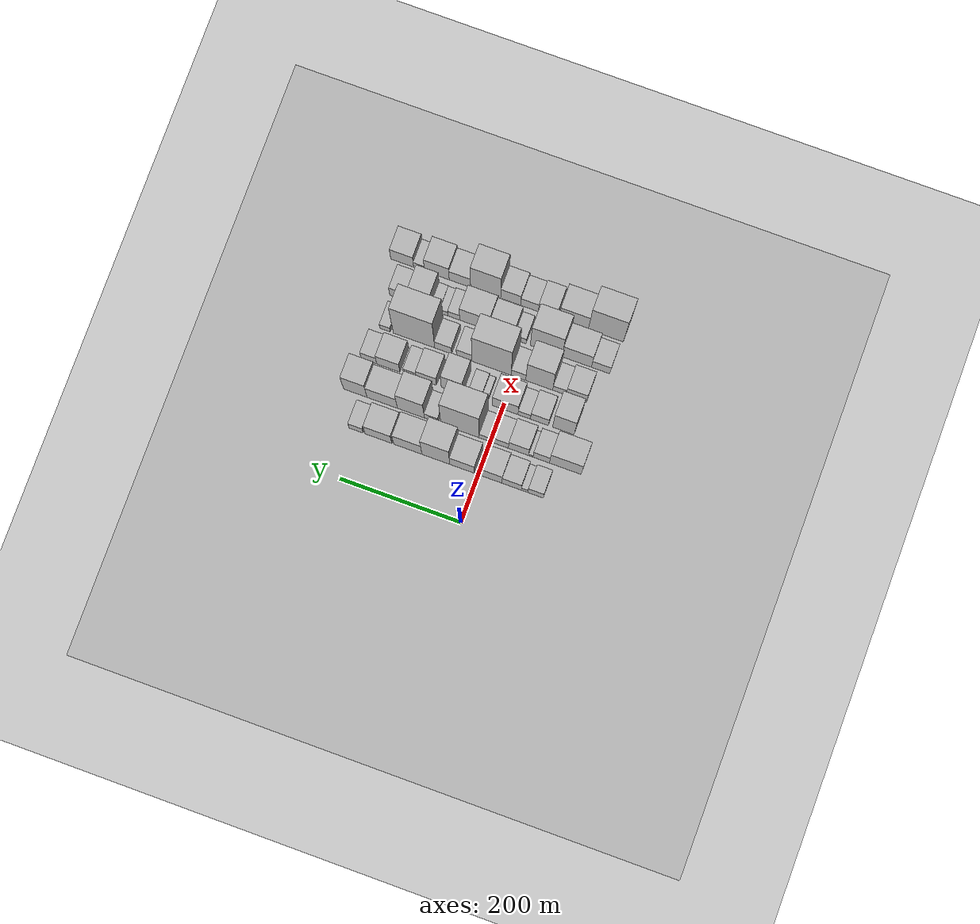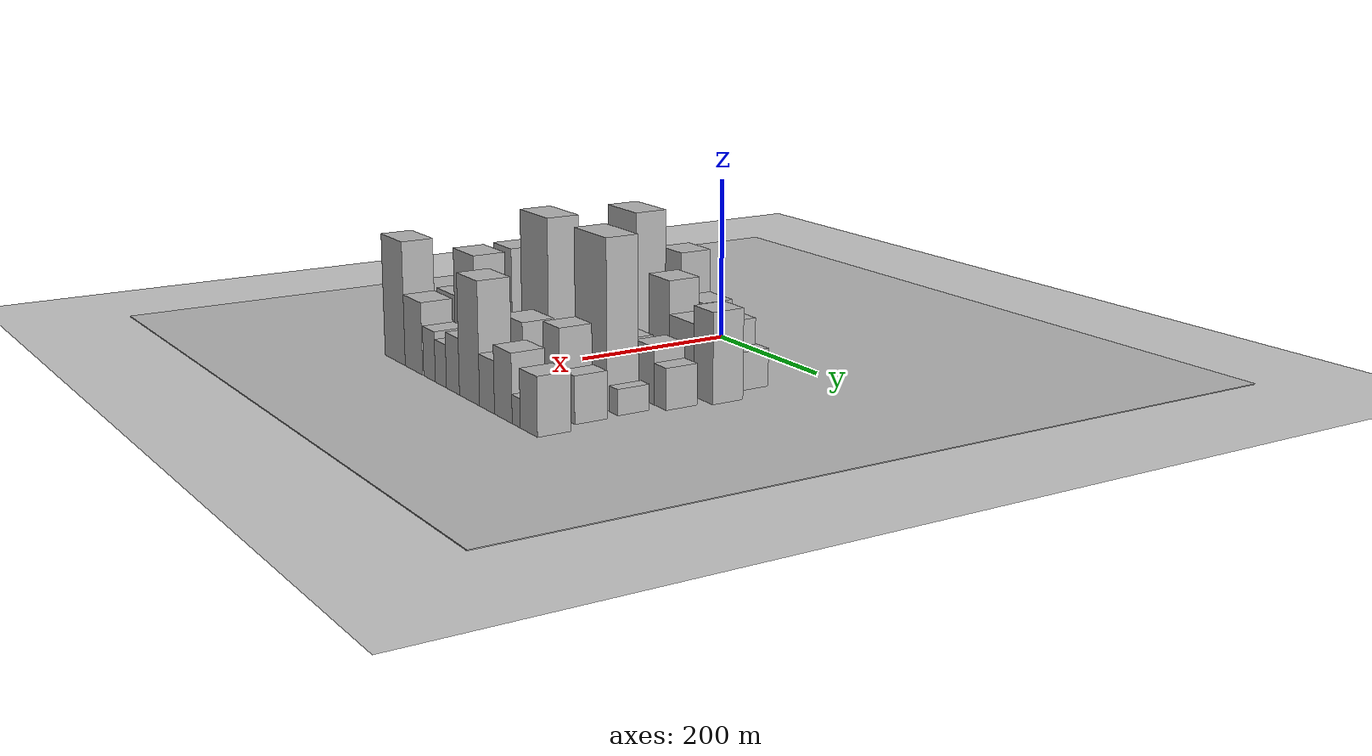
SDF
<sdf version="1.6">
 <world name="default">
  <include><name>ground_plane_1</name><uri>model://HANNAS_ground_plane</uri></include>
  <include>
   <name>ground_plane_2</name>
   <uri>model://HANNAS_ground_plane</uri>
   <pose>100 0 0  0 0 0</pose>
  </include>
  <model name="building_19">
   <static>1</static>
   <pose>100.0000 -94.1826 0 0.000000 0.000000 0.000000</pose>
   <link name="link">
    <pose>0 0 24.00 0 0 0</pose>
    <collision name="collision"><geometry><box><size>40.0000 25.4878 48.0000</size></box></geometry></collision>
    <visual name="visual">
     <cast_shadows>0</cast_shadows>
     <geometry><box><size>40.0000 25.4878 48.0000</size></box></geometry>
     <material>
      <script>
       <uri>model://HANNAS_wall/materials/scripts</uri>
       <uri>model://HANNAS_wall/materials/textures</uri>
       <name>vrc/HANNAS_wall</name>
      </script>
     </material>
    </visual>
   </link>
  </model>
  <model name="building_20">
   <static>1</static>
   <pose>100.0000 -75.9171 0 0.000000 0.000000 0.000000</pose>
   <link name="link">
    <pose>0 0 13.50 0 0 0</pose>
    <collision name="collision"><geometry><box><size>40.0000 11.0433 27.0000</size></box></geometry></collision>
    <visual name="visual">
     <cast_shadows>0</cast_shadows>
     <geometry><box><size>40.0000 11.0433 27.0000</size></box></geometry>
     <material>
      <script>
       <uri>model://HANNAS_wall/materials/scripts</uri>
       <uri>model://HANNAS_wall/materials/textures</uri>
       <name>vrc/HANNAS_wall</name>
      </script>
     </material>
    </visual>
   </link>
  </model>
  <model name="building_21">
   <static>1</static>
   <pose>100.0000 -54.4602 0 0.000000 0.000000 0.000000</pose>
   <link name="link">
    <pose>0 0 28.50 0 0 0</pose>
    <collision name="collision"><geometry><box><size>40.0000 31.8704 57.0000</size></box></geometry></collision>
    <visual name="visual">
     <cast_shadows>0</cast_shadows>
     <geometry><box><size>40.0000 31.8704 57.0000</size></box></geometry>
     <material>
      <script>
       <uri>model://HANNAS_wall/materials/scripts</uri>
       <uri>model://HANNAS_wall/materials/textures</uri>
       <name>vrc/HANNAS_wall</name>
      </script>
     </material>
    </visual>
   </link>
  </model>
  <model name="building_22">
   <static>1</static>
   <pose>100.0000 -20.2143 0 0.000000 0.000000 0.000000</pose>
   <link name="link">
    <pose>0 0 36.00 0 0 0</pose>
    <collision name="collision"><geometry><box><size>40.0000 36.6214 72.0000</size></box></geometry></collision>
    <visual name="visual">
     <cast_shadows>0</cast_shadows>
     <geometry><box><size>40.0000 36.6214 72.0000</size></box></geometry>
     <material>
      <script>
       <uri>model://HANNAS_wall/materials/scripts</uri>
       <uri>model://HANNAS_wall/materials/textures</uri>
       <name>vrc/HANNAS_wall</name>
      </script>
     </material>
    </visual>
   </link>
  </model>
  <model name="building_23">
   <static>1</static>
   <pose>100.0000 27.4279 0 0.000000 0.000000 0.000000</pose>
   <link name="link">
    <pose>0 0 36.00 0 0 0</pose>
    <collision name="collision"><geometry><box><size>40.0000 40.6630 72.0000</size></box></geometry></collision>
    <visual name="visual">
     <cast_shadows>0</cast_shadows>
     <geometry><box><size>40.0000 40.6630 72.0000</size></box></geometry>
     <material>
      <script>
       <uri>model://HANNAS_wall/materials/scripts</uri>
       <uri>model://HANNAS_wall/materials/textures</uri>
       <name>vrc/HANNAS_wall</name>
      </script>
     </material>
    </visual>
   </link>
  </model>
  <model name="building_24">
   <static>1</static>
   <pose>100.0000 70.9083 0 0.000000 0.000000 0.000000</pose>
   <link name="link">
    <pose>0 0 69.00 0 0 0</pose>
    <collision name="collision"><geometry><box><size>40.0000 46.2979 138.0000</size></box></geometry></collision>
    <visual name="visual">
     <cast_shadows>0</cast_shadows>
     <geometry><box><size>40.0000 46.2979 138.0000</size></box></geometry>
     <material>
      <script>
       <uri>model://HANNAS_wall/materials/scripts</uri>
       <uri>model://HANNAS_wall/materials/textures</uri>
       <name>vrc/HANNAS_wall</name>
      </script>
     </material>
    </visual>
   </link>
  </model>
  <model name="building_25">
   <static>1</static>
   <pose>100.0000 117.3907 0 0.000000 0.000000 0.000000</pose>
   <link name="link">
    <pose>0 0 43.50 0 0 0</pose>
    <collision name="collision"><geometry><box><size>40.0000 46.6670 87.0000</size></box></geometry></collision>
    <visual name="visual">
     <cast_shadows>0</cast_shadows>
     <geometry><box><size>40.0000 46.6670 87.0000</size></box></geometry>
     <material>
      <script>
       <uri>model://HANNAS_wall/materials/scripts</uri>
       <uri>model://HANNAS_wall/materials/textures</uri>
       <name>vrc/HANNAS_wall</name>
      </script>
     </material>
    </visual>
   </link>
  </model>
  <model name="building_26">
   <static>1</static>
   <pose>100.0000 166.1145 0 0.000000 0.000000 0.000000</pose>
   <link name="link">
    <pose>0 0 37.50 0 0 0</pose>
    <collision name="collision"><geometry><box><size>40.0000 44.7805 75.0000</size></box></geometry></collision>
    <visual name="visual">
     <cast_shadows>0</cast_shadows>
     <geometry><box><size>40.0000 44.7805 75.0000</size></box></geometry>
     <material>
      <script>
       <uri>model://HANNAS_wall/materials/scripts</uri>
       <uri>model://HANNAS_wall/materials/textures</uri>
       <name>vrc/HANNAS_wall</name>
      </script>
     </material>
    </visual>
   </link>
  </model>
  <model name="building_27">
   <static>1</static>
   <pose>100.0000 203.1543 0 0.000000 0.000000 0.000000</pose>
   <link name="link">
    <pose>0 0 22.50 0 0 0</pose>
    <collision name="collision"><geometry><box><size>40.0000 23.2992 45.0000</size></box></geometry></collision>
    <visual name="visual">
     <cast_shadows>0</cast_shadows>
     <geometry><box><size>40.0000 23.2992 45.0000</size></box></geometry>
     <material>
      <script>
       <uri>model://HANNAS_wall/materials/scripts</uri>
       <uri>model://HANNAS_wall/materials/textures</uri>
       <name>vrc/HANNAS_wall</name>
      </script>
     </material>
    </visual>
   </link>
  </model>
  <model name="building_66">
   <static>1</static>
   <pose>155.0000 -123.4491 0 0.000000 0.000000 0.000000</pose>
   <link name="link">
    <pose>0 0 45.00 0 0 0</pose>
    <collision name="collision"><geometry><box><size>40.0000 52.4199 90.0000</size></box></geometry></collision>
    <visual name="visual">
     <cast_shadows>0</cast_shadows>
     <geometry><box><size>40.0000 52.4199 90.0000</size></box></geometry>
     <material>
      <script>
       <uri>model://HANNAS_wall/materials/scripts</uri>
       <uri>model://HANNAS_wall/materials/textures</uri>
       <name>vrc/HANNAS_wall</name>
      </script>
     </material>
    </visual>
   </link>
  </model>
  <model name="building_67">
   <static>1</static>
   <pose>155.0000 -83.6687 0 0.000000 0.000000 0.000000</pose>
   <link name="link">
    <pose>0 0 27.00 0 0 0</pose>
    <collision name="collision"><geometry><box><size>40.0000 27.1410 54.0000</size></box></geometry></collision>
    <visual name="visual">
     <cast_shadows>0</cast_shadows>
     <geometry><box><size>40.0000 27.1410 54.0000</size></box></geometry>
     <material>
      <script>
       <uri>model://HANNAS_wall/materials/scripts</uri>
       <uri>model://HANNAS_wall/materials/textures</uri>
       <name>vrc/HANNAS_wall</name>
      </script>
     </material>
    </visual>
   </link>
  </model>
  <model name="building_68">
   <static>1</static>
   <pose>155.0000 -66.5116 0 0.000000 0.000000 0.000000</pose>
   <link name="link">
    <pose>0 0 7.50 0 0 0</pose>
    <collision name="collision"><geometry><box><size>40.0000 7.1732 15.0000</size></box></geometry></collision>
    <visual name="visual">
     <cast_shadows>0</cast_shadows>
     <geometry><box><size>40.0000 7.1732 15.0000</size></box></geometry>
     <material>
      <script>
       <uri>model://HANNAS_wall/materials/scripts</uri>
       <uri>model://HANNAS_wall/materials/textures</uri>
       <name>vrc/HANNAS_wall</name>
      </script>
     </material>
    </visual>
   </link>
  </model>
  <model name="building_69">
   <static>1</static>
   <pose>155.0000 -46.1079 0 0.000000 0.000000 0.000000</pose>
   <link name="link">
    <pose>0 0 31.50 0 0 0</pose>
    <collision name="collision"><geometry><box><size>40.0000 33.6343 63.0000</size></box></geometry></collision>
    <visual name="visual">
     <cast_shadows>0</cast_shadows>
     <geometry><box><size>40.0000 33.6343 63.0000</size></box></geometry>
     <material>
      <script>
       <uri>model://HANNAS_wall/materials/scripts</uri>
       <uri>model://HANNAS_wall/materials/textures</uri>
       <name>vrc/HANNAS_wall</name>
      </script>
     </material>
    </visual>
   </link>
  </model>
  <model name="building_70">
   <static>1</static>
   <pose>155.0000 -15.5659 0 0.000000 0.000000 0.000000</pose>
   <link name="link">
    <pose>0 0 24.00 0 0 0</pose>
    <collision name="collision"><geometry><box><size>40.0000 27.4497 48.0000</size></box></geometry></collision>
    <visual name="visual">
     <cast_shadows>0</cast_shadows>
     <geometry><box><size>40.0000 27.4497 48.0000</size></box></geometry>
     <material>
      <script>
       <uri>model://HANNAS_wall/materials/scripts</uri>
       <uri>model://HANNAS_wall/materials/textures</uri>
       <name>vrc/HANNAS_wall</name>
      </script>
     </material>
    </visual>
   </link>
  </model>
  <model name="building_71">
   <static>1</static>
   <pose>155.0000 8.6668 0 0.000000 0.000000 0.000000</pose>
   <link name="link">
    <pose>0 0 18.00 0 0 0</pose>
    <collision name="collision"><geometry><box><size>40.0000 21.0157 36.0000</size></box></geometry></collision>
    <visual name="visual">
     <cast_shadows>0</cast_shadows>
     <geometry><box><size>40.0000 21.0157 36.0000</size></box></geometry>
     <material>
      <script>
       <uri>model://HANNAS_wall/materials/scripts</uri>
       <uri>model://HANNAS_wall/materials/textures</uri>
       <name>vrc/HANNAS_wall</name>
      </script>
     </material>
    </visual>
   </link>
  </model>
  <model name="building_72">
   <static>1</static>
   <pose>155.0000 50.9459 0 0.000000 0.000000 0.000000</pose>
   <link name="link">
    <pose>0 0 94.50 0 0 0</pose>
    <collision name="collision"><geometry><box><size>40.0000 63.5425 189.0000</size></box></geometry></collision>
    <visual name="visual">
     <cast_shadows>0</cast_shadows>
     <geometry><box><size>40.0000 63.5425 189.0000</size></box></geometry>
     <material>
      <script>
       <uri>model://HANNAS_wall/materials/scripts</uri>
       <uri>model://HANNAS_wall/materials/textures</uri>
       <name>vrc/HANNAS_wall</name>
      </script>
     </material>
    </visual>
   </link>
  </model>
  <model name="building_73">
   <static>1</static>
   <pose>155.0000 98.8356 0 0.000000 0.000000 0.000000</pose>
   <link name="link">
    <pose>0 0 21.00 0 0 0</pose>
    <collision name="collision"><geometry><box><size>40.0000 22.2368 42.0000</size></box></geometry></collision>
    <visual name="visual">
     <cast_shadows>0</cast_shadows>
     <geometry><box><size>40.0000 22.2368 42.0000</size></box></geometry>
     <material>
      <script>
       <uri>model://HANNAS_wall/materials/scripts</uri>
       <uri>model://HANNAS_wall/materials/textures</uri>
       <name>vrc/HANNAS_wall</name>
      </script>
     </material>
    </visual>
   </link>
  </model>
  <model name="building_74">
   <static>1</static>
   <pose>155.0000 132.4688 0 0.000000 0.000000 0.000000</pose>
   <link name="link">
    <pose>0 0 61.50 0 0 0</pose>
    <collision name="collision"><geometry><box><size>40.0000 45.0297 123.0000</size></box></geometry></collision>
    <visual name="visual">
     <cast_shadows>0</cast_shadows>
     <geometry><box><size>40.0000 45.0297 123.0000</size></box></geometry>
     <material>
      <script>
       <uri>model://HANNAS_wall/materials/scripts</uri>
       <uri>model://HANNAS_wall/materials/textures</uri>
       <name>vrc/HANNAS_wall</name>
      </script>
     </material>
    </visual>
   </link>
  </model>
  <model name="building_75">
   <static>1</static>
   <pose>155.0000 180.1663 0 0.000000 0.000000 0.000000</pose>
   <link name="link">
    <pose>0 0 42.00 0 0 0</pose>
    <collision name="collision"><geometry><box><size>40.0000 50.3654 84.0000</size></box></geometry></collision>
    <visual name="visual">
     <cast_shadows>0</cast_shadows>
     <geometry><box><size>40.0000 50.3654 84.0000</size></box></geometry>
     <material>
      <script>
       <uri>model://HANNAS_wall/materials/scripts</uri>
       <uri>model://HANNAS_wall/materials/textures</uri>
       <name>vrc/HANNAS_wall</name>
      </script>
     </material>
    </visual>
   </link>
  </model>
  <model name="building_76">
   <static>1</static>
   <pose>155.0000 224.8794 0 0.000000 0.000000 0.000000</pose>
   <link name="link">
    <pose>0 0 52.50 0 0 0</pose>
    <collision name="collision"><geometry><box><size>40.0000 39.0606 105.0000</size></box></geometry></collision>
    <visual name="visual">
     <cast_shadows>0</cast_shadows>
     <geometry><box><size>40.0000 39.0606 105.0000</size></box></geometry>
     <material>
      <script>
       <uri>model://HANNAS_wall/materials/scripts</uri>
       <uri>model://HANNAS_wall/materials/textures</uri>
       <name>vrc/HANNAS_wall</name>
      </script>
     </material>
    </visual>
   </link>
  </model>
  <model name="building_121">
   <static>1</static>
   <pose>210.0000 -100.4886 0 0.000000 0.000000 0.000000</pose>
   <link name="link">
    <pose>0 0 58.50 0 0 0</pose>
    <collision name="collision"><geometry><box><size>40.0000 35.5560 117.0000</size></box></geometry></collision>
    <visual name="visual">
     <cast_shadows>0</cast_shadows>
     <geometry><box><size>40.0000 35.5560 117.0000</size></box></geometry>
     <material>
      <script>
       <uri>model://HANNAS_wall/materials/scripts</uri>
       <uri>model://HANNAS_wall/materials/textures</uri>
       <name>vrc/HANNAS_wall</name>
      </script>
     </material>
    </visual>
   </link>
  </model>
  <model name="building_122">
   <static>1</static>
   <pose>210.0000 -60.8595 0 0.000000 0.000000 0.000000</pose>
   <link name="link">
    <pose>0 0 27.00 0 0 0</pose>
    <collision name="collision"><geometry><box><size>40.0000 29.7022 54.0000</size></box></geometry></collision>
    <visual name="visual">
     <cast_shadows>0</cast_shadows>
     <geometry><box><size>40.0000 29.7022 54.0000</size></box></geometry>
     <material>
      <script>
       <uri>model://HANNAS_wall/materials/scripts</uri>
       <uri>model://HANNAS_wall/materials/textures</uri>
       <name>vrc/HANNAS_wall</name>
      </script>
     </material>
    </visual>
   </link>
  </model>
  <model name="building_123">
   <static>1</static>
   <pose>210.0000 -35.5859 0 0.000000 0.000000 0.000000</pose>
   <link name="link">
    <pose>0 0 18.00 0 0 0</pose>
    <collision name="collision"><geometry><box><size>40.0000 20.8452 36.0000</size></box></geometry></collision>
    <visual name="visual">
     <cast_shadows>0</cast_shadows>
     <geometry><box><size>40.0000 20.8452 36.0000</size></box></geometry>
     <material>
      <script>
       <uri>model://HANNAS_wall/materials/scripts</uri>
       <uri>model://HANNAS_wall/materials/textures</uri>
       <name>vrc/HANNAS_wall</name>
      </script>
     </material>
    </visual>
   </link>
  </model>
  <model name="building_124">
   <static>1</static>
   <pose>210.0000 -3.6899 0 0.000000 0.000000 0.000000</pose>
   <link name="link">
    <pose>0 0 37.50 0 0 0</pose>
    <collision name="collision"><geometry><box><size>40.0000 42.9467 75.0000</size></box></geometry></collision>
    <visual name="visual">
     <cast_shadows>0</cast_shadows>
     <geometry><box><size>40.0000 42.9467 75.0000</size></box></geometry>
     <material>
      <script>
       <uri>model://HANNAS_wall/materials/scripts</uri>
       <uri>model://HANNAS_wall/materials/textures</uri>
       <name>vrc/HANNAS_wall</name>
      </script>
     </material>
    </visual>
   </link>
  </model>
  <model name="building_125">
   <static>1</static>
   <pose>210.0000 31.0170 0 0.000000 0.000000 0.000000</pose>
   <link name="link">
    <pose>0 0 12.00 0 0 0</pose>
    <collision name="collision"><geometry><box><size>40.0000 10.4672 24.0000</size></box></geometry></collision>
    <visual name="visual">
     <cast_shadows>0</cast_shadows>
     <geometry><box><size>40.0000 10.4672 24.0000</size></box></geometry>
     <material>
      <script>
       <uri>model://HANNAS_wall/materials/scripts</uri>
       <uri>model://HANNAS_wall/materials/textures</uri>
       <name>vrc/HANNAS_wall</name>
      </script>
     </material>
    </visual>
   </link>
  </model>
  <model name="building_126">
   <static>1</static>
   <pose>210.0000 47.2341 0 0.000000 0.000000 0.000000</pose>
   <link name="link">
    <pose>0 0 19.50 0 0 0</pose>
    <collision name="collision"><geometry><box><size>40.0000 21.9669 39.0000</size></box></geometry></collision>
    <visual name="visual">
     <cast_shadows>0</cast_shadows>
     <geometry><box><size>40.0000 21.9669 39.0000</size></box></geometry>
     <material>
      <script>
       <uri>model://HANNAS_wall/materials/scripts</uri>
       <uri>model://HANNAS_wall/materials/textures</uri>
       <name>vrc/HANNAS_wall</name>
      </script>
     </material>
    </visual>
   </link>
  </model>
  <model name="building_127">
   <static>1</static>
   <pose>210.0000 84.7265 0 0.000000 0.000000 0.000000</pose>
   <link name="link">
    <pose>0 0 48.00 0 0 0</pose>
    <collision name="collision"><geometry><box><size>40.0000 35.0179 96.0000</size></box></geometry></collision>
    <visual name="visual">
     <cast_shadows>0</cast_shadows>
     <geometry><box><size>40.0000 35.0179 96.0000</size></box></geometry>
     <material>
      <script>
       <uri>model://HANNAS_wall/materials/scripts</uri>
       <uri>model://HANNAS_wall/materials/textures</uri>
       <name>vrc/HANNAS_wall</name>
      </script>
     </material>
    </visual>
   </link>
  </model>
  <model name="building_128">
   <static>1</static>
   <pose>210.0000 127.0119 0 0.000000 0.000000 0.000000</pose>
   <link name="link">
    <pose>0 0 30.00 0 0 0</pose>
    <collision name="collision"><geometry><box><size>40.0000 33.5530 60.0000</size></box></geometry></collision>
    <visual name="visual">
     <cast_shadows>0</cast_shadows>
     <geometry><box><size>40.0000 33.5530 60.0000</size></box></geometry>
     <material>
      <script>
       <uri>model://HANNAS_wall/materials/scripts</uri>
       <uri>model://HANNAS_wall/materials/textures</uri>
       <name>vrc/HANNAS_wall</name>
      </script>
     </material>
    </visual>
   </link>
  </model>
  <model name="building_129">
   <static>1</static>
   <pose>210.0000 154.4551 0 0.000000 0.000000 0.000000</pose>
   <link name="link">
    <pose>0 0 21.00 0 0 0</pose>
    <collision name="collision"><geometry><box><size>40.0000 21.3334 42.0000</size></box></geometry></collision>
    <visual name="visual">
     <cast_shadows>0</cast_shadows>
     <geometry><box><size>40.0000 21.3334 42.0000</size></box></geometry>
     <material>
      <script>
       <uri>model://HANNAS_wall/materials/scripts</uri>
       <uri>model://HANNAS_wall/materials/textures</uri>
       <name>vrc/HANNAS_wall</name>
      </script>
     </material>
    </visual>
   </link>
  </model>
  <model name="building_130">
   <static>1</static>
   <pose>210.0000 190.5072 0 0.000000 0.000000 0.000000</pose>
   <link name="link">
    <pose>0 0 33.00 0 0 0</pose>
    <collision name="collision"><geometry><box><size>40.0000 38.7709 66.0000</size></box></geometry></collision>
    <visual name="visual">
     <cast_shadows>0</cast_shadows>
     <geometry><box><size>40.0000 38.7709 66.0000</size></box></geometry>
     <material>
      <script>
       <uri>model://HANNAS_wall/materials/scripts</uri>
       <uri>model://HANNAS_wall/materials/textures</uri>
       <name>vrc/HANNAS_wall</name>
      </script>
     </material>
    </visual>
   </link>
  </model>
  <model name="building_131">
   <static>1</static>
   <pose>210.0000 222.9151 0 0.000000 0.000000 0.000000</pose>
   <link name="link">
    <pose>0 0 24.00 0 0 0</pose>
    <collision name="collision"><geometry><box><size>40.0000 26.0449 48.0000</size></box></geometry></collision>
    <visual name="visual">
     <cast_shadows>0</cast_shadows>
     <geometry><box><size>40.0000 26.0449 48.0000</size></box></geometry>
     <material>
      <script>
       <uri>model://HANNAS_wall/materials/scripts</uri>
       <uri>model://HANNAS_wall/materials/textures</uri>
       <name>vrc/HANNAS_wall</name>
      </script>
     </material>
    </visual>
   </link>
  </model>
  <model name="building_176">
   <static>1</static>
   <pose>265.0000 -102.4106 0 0.000000 0.000000 0.000000</pose>
   <link name="link">
    <pose>0 0 30.00 0 0 0</pose>
    <collision name="collision"><geometry><box><size>40.0000 33.7626 60.0000</size></box></geometry></collision>
    <visual name="visual">
     <cast_shadows>0</cast_shadows>
     <geometry><box><size>40.0000 33.7626 60.0000</size></box></geometry>
     <material>
      <script>
       <uri>model://HANNAS_wall/materials/scripts</uri>
       <uri>model://HANNAS_wall/materials/textures</uri>
       <name>vrc/HANNAS_wall</name>
      </script>
     </material>
    </visual>
   </link>
  </model>
  <model name="building_177">
   <static>1</static>
   <pose>265.0000 -74.2475 0 0.000000 0.000000 0.000000</pose>
   <link name="link">
    <pose>0 0 19.50 0 0 0</pose>
    <collision name="collision"><geometry><box><size>40.0000 22.5635 39.0000</size></box></geometry></collision>
    <visual name="visual">
     <cast_shadows>0</cast_shadows>
     <geometry><box><size>40.0000 22.5635 39.0000</size></box></geometry>
     <material>
      <script>
       <uri>model://HANNAS_wall/materials/scripts</uri>
       <uri>model://HANNAS_wall/materials/textures</uri>
       <name>vrc/HANNAS_wall</name>
      </script>
     </material>
    </visual>
   </link>
  </model>
  <model name="building_178">
   <static>1</static>
   <pose>265.0000 -40.5972 0 0.000000 0.000000 0.000000</pose>
   <link name="link">
    <pose>0 0 70.50 0 0 0</pose>
    <collision name="collision"><geometry><box><size>40.0000 44.7369 141.0000</size></box></geometry></collision>
    <visual name="visual">
     <cast_shadows>0</cast_shadows>
     <geometry><box><size>40.0000 44.7369 141.0000</size></box></geometry>
     <material>
      <script>
       <uri>model://HANNAS_wall/materials/scripts</uri>
       <uri>model://HANNAS_wall/materials/textures</uri>
       <name>vrc/HANNAS_wall</name>
      </script>
     </material>
    </visual>
   </link>
  </model>
  <model name="building_179">
   <static>1</static>
   <pose>265.0000 -5.9709 0 0.000000 0.000000 0.000000</pose>
   <link name="link">
    <pose>0 0 24.00 0 0 0</pose>
    <collision name="collision"><geometry><box><size>40.0000 24.5157 48.0000</size></box></geometry></collision>
    <visual name="visual">
     <cast_shadows>0</cast_shadows>
     <geometry><box><size>40.0000 24.5157 48.0000</size></box></geometry>
     <material>
      <script>
       <uri>model://HANNAS_wall/materials/scripts</uri>
       <uri>model://HANNAS_wall/materials/textures</uri>
       <name>vrc/HANNAS_wall</name>
      </script>
     </material>
    </visual>
   </link>
  </model>
  <model name="building_180">
   <static>1</static>
   <pose>265.0000 38.8745 0 0.000000 0.000000 0.000000</pose>
   <link name="link">
    <pose>0 0 96.00 0 0 0</pose>
    <collision name="collision"><geometry><box><size>40.0000 65.1752 192.0000</size></box></geometry></collision>
    <visual name="visual">
     <cast_shadows>0</cast_shadows>
     <geometry><box><size>40.0000 65.1752 192.0000</size></box></geometry>
     <material>
      <script>
       <uri>model://HANNAS_wall/materials/scripts</uri>
       <uri>model://HANNAS_wall/materials/textures</uri>
       <name>vrc/HANNAS_wall</name>
      </script>
     </material>
    </visual>
   </link>
  </model>
  <model name="building_181">
   <static>1</static>
   <pose>265.0000 84.2791 0 0.000000 0.000000 0.000000</pose>
   <link name="link">
    <pose>0 0 25.50 0 0 0</pose>
    <collision name="collision"><geometry><box><size>40.0000 25.6340 51.0000</size></box></geometry></collision>
    <visual name="visual">
     <cast_shadows>0</cast_shadows>
     <geometry><box><size>40.0000 25.6340 51.0000</size></box></geometry>
     <material>
      <script>
       <uri>model://HANNAS_wall/materials/scripts</uri>
       <uri>model://HANNAS_wall/materials/textures</uri>
       <name>vrc/HANNAS_wall</name>
      </script>
     </material>
    </visual>
   </link>
  </model>
  <model name="building_182">
   <static>1</static>
   <pose>265.0000 119.2384 0 0.000000 0.000000 0.000000</pose>
   <link name="link">
    <pose>0 0 25.50 0 0 0</pose>
    <collision name="collision"><geometry><box><size>40.0000 28.2844 51.0000</size></box></geometry></collision>
    <visual name="visual">
     <cast_shadows>0</cast_shadows>
     <geometry><box><size>40.0000 28.2844 51.0000</size></box></geometry>
     <material>
      <script>
       <uri>model://HANNAS_wall/materials/scripts</uri>
       <uri>model://HANNAS_wall/materials/textures</uri>
       <name>vrc/HANNAS_wall</name>
      </script>
     </material>
    </visual>
   </link>
  </model>
  <model name="building_183">
   <static>1</static>
   <pose>265.0000 167.9091 0 0.000000 0.000000 0.000000</pose>
   <link name="link">
    <pose>0 0 96.00 0 0 0</pose>
    <collision name="collision"><geometry><box><size>40.0000 69.0570 192.0000</size></box></geometry></collision>
    <visual name="visual">
     <cast_shadows>0</cast_shadows>
     <geometry><box><size>40.0000 69.0570 192.0000</size></box></geometry>
     <material>
      <script>
       <uri>model://HANNAS_wall/materials/scripts</uri>
       <uri>model://HANNAS_wall/materials/textures</uri>
       <name>vrc/HANNAS_wall</name>
      </script>
     </material>
    </visual>
   </link>
  </model>
  <model name="building_184">
   <static>1</static>
   <pose>265.0000 216.3122 0 0.000000 0.000000 0.000000</pose>
   <link name="link">
    <pose>0 0 15.00 0 0 0</pose>
    <collision name="collision"><geometry><box><size>40.0000 17.7493 30.0000</size></box></geometry></collision>
    <visual name="visual">
     <cast_shadows>0</cast_shadows>
     <geometry><box><size>40.0000 17.7493 30.0000</size></box></geometry>
     <material>
      <script>
       <uri>model://HANNAS_wall/materials/scripts</uri>
       <uri>model://HANNAS_wall/materials/textures</uri>
       <name>vrc/HANNAS_wall</name>
      </script>
     </material>
    </visual>
   </link>
  </model>
  <model name="building_227">
   <static>1</static>
   <pose>320.0000 -122.8095 0 0.000000 0.000000 0.000000</pose>
   <link name="link">
    <pose>0 0 25.50 0 0 0</pose>
    <collision name="collision"><geometry><box><size>40.0000 30.4604 51.0000</size></box></geometry></collision>
    <visual name="visual">
     <cast_shadows>0</cast_shadows>
     <geometry><box><size>40.0000 30.4604 51.0000</size></box></geometry>
     <material>
      <script>
       <uri>model://HANNAS_wall/materials/scripts</uri>
       <uri>model://HANNAS_wall/materials/textures</uri>
       <name>vrc/HANNAS_wall</name>
      </script>
     </material>
    </visual>
   </link>
  </model>
  <model name="building_228">
   <static>1</static>
   <pose>320.0000 -83.3158 0 0.000000 0.000000 0.000000</pose>
   <link name="link">
    <pose>0 0 42.00 0 0 0</pose>
    <collision name="collision"><geometry><box><size>40.0000 48.5270 84.0000</size></box></geometry></collision>
    <visual name="visual">
     <cast_shadows>0</cast_shadows>
     <geometry><box><size>40.0000 48.5270 84.0000</size></box></geometry>
     <material>
      <script>
       <uri>model://HANNAS_wall/materials/scripts</uri>
       <uri>model://HANNAS_wall/materials/textures</uri>
       <name>vrc/HANNAS_wall</name>
      </script>
     </material>
    </visual>
   </link>
  </model>
  <model name="building_229">
   <static>1</static>
   <pose>320.0000 -32.4972 0 0.000000 0.000000 0.000000</pose>
   <link name="link">
    <pose>0 0 70.50 0 0 0</pose>
    <collision name="collision"><geometry><box><size>40.0000 53.1104 141.0000</size></box></geometry></collision>
    <visual name="visual">
     <cast_shadows>0</cast_shadows>
     <geometry><box><size>40.0000 53.1104 141.0000</size></box></geometry>
     <material>
      <script>
       <uri>model://HANNAS_wall/materials/scripts</uri>
       <uri>model://HANNAS_wall/materials/textures</uri>
       <name>vrc/HANNAS_wall</name>
      </script>
     </material>
    </visual>
   </link>
  </model>
  <model name="building_230">
   <static>1</static>
   <pose>320.0000 11.0528 0 0.000000 0.000000 0.000000</pose>
   <link name="link">
    <pose>0 0 18.00 0 0 0</pose>
    <collision name="collision"><geometry><box><size>40.0000 19.9895 36.0000</size></box></geometry></collision>
    <visual name="visual">
     <cast_shadows>0</cast_shadows>
     <geometry><box><size>40.0000 19.9895 36.0000</size></box></geometry>
     <material>
      <script>
       <uri>model://HANNAS_wall/materials/scripts</uri>
       <uri>model://HANNAS_wall/materials/textures</uri>
       <name>vrc/HANNAS_wall</name>
      </script>
     </material>
    </visual>
   </link>
  </model>
  <model name="building_231">
   <static>1</static>
   <pose>320.0000 41.7755 0 0.000000 0.000000 0.000000</pose>
   <link name="link">
    <pose>0 0 36.00 0 0 0</pose>
    <collision name="collision"><geometry><box><size>40.0000 41.4560 72.0000</size></box></geometry></collision>
    <visual name="visual">
     <cast_shadows>0</cast_shadows>
     <geometry><box><size>40.0000 41.4560 72.0000</size></box></geometry>
     <material>
      <script>
       <uri>model://HANNAS_wall/materials/scripts</uri>
       <uri>model://HANNAS_wall/materials/textures</uri>
       <name>vrc/HANNAS_wall</name>
      </script>
     </material>
    </visual>
   </link>
  </model>
  <model name="building_232">
   <static>1</static>
   <pose>320.0000 87.2360 0 0.000000 0.000000 0.000000</pose>
   <link name="link">
    <pose>0 0 43.50 0 0 0</pose>
    <collision name="collision"><geometry><box><size>40.0000 49.4651 87.0000</size></box></geometry></collision>
    <visual name="visual">
     <cast_shadows>0</cast_shadows>
     <geometry><box><size>40.0000 49.4651 87.0000</size></box></geometry>
     <material>
      <script>
       <uri>model://HANNAS_wall/materials/scripts</uri>
       <uri>model://HANNAS_wall/materials/textures</uri>
       <name>vrc/HANNAS_wall</name>
      </script>
     </material>
    </visual>
   </link>
  </model>
  <model name="building_233">
   <static>1</static>
   <pose>320.0000 121.8916 0 0.000000 0.000000 0.000000</pose>
   <link name="link">
    <pose>0 0 18.00 0 0 0</pose>
    <collision name="collision"><geometry><box><size>40.0000 19.8460 36.0000</size></box></geometry></collision>
    <visual name="visual">
     <cast_shadows>0</cast_shadows>
     <geometry><box><size>40.0000 19.8460 36.0000</size></box></geometry>
     <material>
      <script>
       <uri>model://HANNAS_wall/materials/scripts</uri>
       <uri>model://HANNAS_wall/materials/textures</uri>
       <name>vrc/HANNAS_wall</name>
      </script>
     </material>
    </visual>
   </link>
  </model>
  <model name="building_234">
   <static>1</static>
   <pose>320.0000 138.3473 0 0.000000 0.000000 0.000000</pose>
   <link name="link">
    <pose>0 0 13.50 0 0 0</pose>
    <collision name="collision"><geometry><box><size>40.0000 13.0655 27.0000</size></box></geometry></collision>
    <visual name="visual">
     <cast_shadows>0</cast_shadows>
     <geometry><box><size>40.0000 13.0655 27.0000</size></box></geometry>
     <material>
      <script>
       <uri>model://HANNAS_wall/materials/scripts</uri>
       <uri>model://HANNAS_wall/materials/textures</uri>
       <name>vrc/HANNAS_wall</name>
      </script>
     </material>
    </visual>
   </link>
  </model>
  <model name="building_235">
   <static>1</static>
   <pose>320.0000 152.6804 0 0.000000 0.000000 0.000000</pose>
   <link name="link">
    <pose>0 0 15.00 0 0 0</pose>
    <collision name="collision"><geometry><box><size>40.0000 15.6007 30.0000</size></box></geometry></collision>
    <visual name="visual">
     <cast_shadows>0</cast_shadows>
     <geometry><box><size>40.0000 15.6007 30.0000</size></box></geometry>
     <material>
      <script>
       <uri>model://HANNAS_wall/materials/scripts</uri>
       <uri>model://HANNAS_wall/materials/textures</uri>
       <name>vrc/HANNAS_wall</name>
      </script>
     </material>
    </visual>
   </link>
  </model>
  <model name="building_236">
   <static>1</static>
   <pose>320.0000 178.4413 0 0.000000 0.000000 0.000000</pose>
   <link name="link">
    <pose>0 0 49.50 0 0 0</pose>
    <collision name="collision"><geometry><box><size>40.0000 35.9211 99.0000</size></box></geometry></collision>
    <visual name="visual">
     <cast_shadows>0</cast_shadows>
     <geometry><box><size>40.0000 35.9211 99.0000</size></box></geometry>
     <material>
      <script>
       <uri>model://HANNAS_wall/materials/scripts</uri>
       <uri>model://HANNAS_wall/materials/textures</uri>
       <name>vrc/HANNAS_wall</name>
      </script>
     </material>
    </visual>
   </link>
  </model>
  <model name="building_237">
   <static>1</static>
   <pose>320.0000 214.5837 0 0.000000 0.000000 0.000000</pose>
   <link name="link">
    <pose>0 0 27.00 0 0 0</pose>
    <collision name="collision"><geometry><box><size>40.0000 28.3636 54.0000</size></box></geometry></collision>
    <visual name="visual">
     <cast_shadows>0</cast_shadows>
     <geometry><box><size>40.0000 28.3636 54.0000</size></box></geometry>
     <material>
      <script>
       <uri>model://HANNAS_wall/materials/scripts</uri>
       <uri>model://HANNAS_wall/materials/textures</uri>
       <name>vrc/HANNAS_wall</name>
      </script>
     </material>
    </visual>
   </link>
  </model>
  <model name="building_277">
   <static>1</static>
   <pose>375.0000 -111.9700 0 0.000000 0.000000 0.000000</pose>
   <link name="link">
    <pose>0 0 75.00 0 0 0</pose>
    <collision name="collision"><geometry><box><size>40.0000 58.4921 150.0000</size></box></geometry></collision>
    <visual name="visual">
     <cast_shadows>0</cast_shadows>
     <geometry><box><size>40.0000 58.4921 150.0000</size></box></geometry>
     <material>
      <script>
       <uri>model://HANNAS_wall/materials/scripts</uri>
       <uri>model://HANNAS_wall/materials/textures</uri>
       <name>vrc/HANNAS_wall</name>
      </script>
     </material>
    </visual>
   </link>
  </model>
  <model name="building_278">
   <static>1</static>
   <pose>375.0000 -58.3980 0 0.000000 0.000000 0.000000</pose>
   <link name="link">
    <pose>0 0 43.50 0 0 0</pose>
    <collision name="collision"><geometry><box><size>40.0000 48.6520 87.0000</size></box></geometry></collision>
    <visual name="visual">
     <cast_shadows>0</cast_shadows>
     <geometry><box><size>40.0000 48.6520 87.0000</size></box></geometry>
     <material>
      <script>
       <uri>model://HANNAS_wall/materials/scripts</uri>
       <uri>model://HANNAS_wall/materials/textures</uri>
       <name>vrc/HANNAS_wall</name>
      </script>
     </material>
    </visual>
   </link>
  </model>
  <model name="building_279">
   <static>1</static>
   <pose>375.0000 -15.2677 0 0.000000 0.000000 0.000000</pose>
   <link name="link">
    <pose>0 0 30.00 0 0 0</pose>
    <collision name="collision"><geometry><box><size>40.0000 31.6085 60.0000</size></box></geometry></collision>
    <visual name="visual">
     <cast_shadows>0</cast_shadows>
     <geometry><box><size>40.0000 31.6085 60.0000</size></box></geometry>
     <material>
      <script>
       <uri>model://HANNAS_wall/materials/scripts</uri>
       <uri>model://HANNAS_wall/materials/textures</uri>
       <name>vrc/HANNAS_wall</name>
      </script>
     </material>
    </visual>
   </link>
  </model>
  <model name="building_280">
   <static>1</static>
   <pose>375.0000 15.2521 0 0.000000 0.000000 0.000000</pose>
   <link name="link">
    <pose>0 0 25.50 0 0 0</pose>
    <collision name="collision"><geometry><box><size>40.0000 29.4310 51.0000</size></box></geometry></collision>
    <visual name="visual">
     <cast_shadows>0</cast_shadows>
     <geometry><box><size>40.0000 29.4310 51.0000</size></box></geometry>
     <material>
      <script>
       <uri>model://HANNAS_wall/materials/scripts</uri>
       <uri>model://HANNAS_wall/materials/textures</uri>
       <name>vrc/HANNAS_wall</name>
      </script>
     </material>
    </visual>
   </link>
  </model>
  <model name="building_281">
   <static>1</static>
   <pose>375.0000 46.6932 0 0.000000 0.000000 0.000000</pose>
   <link name="link">
    <pose>0 0 33.00 0 0 0</pose>
    <collision name="collision"><geometry><box><size>40.0000 33.4511 66.0000</size></box></geometry></collision>
    <visual name="visual">
     <cast_shadows>0</cast_shadows>
     <geometry><box><size>40.0000 33.4511 66.0000</size></box></geometry>
     <material>
      <script>
       <uri>model://HANNAS_wall/materials/scripts</uri>
       <uri>model://HANNAS_wall/materials/textures</uri>
       <name>vrc/HANNAS_wall</name>
      </script>
     </material>
    </visual>
   </link>
  </model>
  <model name="building_282">
   <static>1</static>
   <pose>375.0000 88.5706 0 0.000000 0.000000 0.000000</pose>
   <link name="link">
    <pose>0 0 70.50 0 0 0</pose>
    <collision name="collision"><geometry><box><size>40.0000 50.3038 141.0000</size></box></geometry></collision>
    <visual name="visual">
     <cast_shadows>0</cast_shadows>
     <geometry><box><size>40.0000 50.3038 141.0000</size></box></geometry>
     <material>
      <script>
       <uri>model://HANNAS_wall/materials/scripts</uri>
       <uri>model://HANNAS_wall/materials/textures</uri>
       <name>vrc/HANNAS_wall</name>
      </script>
     </material>
    </visual>
   </link>
  </model>
  <model name="building_283">
   <static>1</static>
   <pose>375.0000 131.6533 0 0.000000 0.000000 0.000000</pose>
   <link name="link">
    <pose>0 0 30.00 0 0 0</pose>
    <collision name="collision"><geometry><box><size>40.0000 35.8616 60.0000</size></box></geometry></collision>
    <visual name="visual">
     <cast_shadows>0</cast_shadows>
     <geometry><box><size>40.0000 35.8616 60.0000</size></box></geometry>
     <material>
      <script>
       <uri>model://HANNAS_wall/materials/scripts</uri>
       <uri>model://HANNAS_wall/materials/textures</uri>
       <name>vrc/HANNAS_wall</name>
      </script>
     </material>
    </visual>
   </link>
  </model>
  <model name="building_284">
   <static>1</static>
   <pose>375.0000 170.2382 0 0.000000 0.000000 0.000000</pose>
   <link name="link">
    <pose>0 0 39.00 0 0 0</pose>
    <collision name="collision"><geometry><box><size>40.0000 41.3083 78.0000</size></box></geometry></collision>
    <visual name="visual">
     <cast_shadows>0</cast_shadows>
     <geometry><box><size>40.0000 41.3083 78.0000</size></box></geometry>
     <material>
      <script>
       <uri>model://HANNAS_wall/materials/scripts</uri>
       <uri>model://HANNAS_wall/materials/textures</uri>
       <name>vrc/HANNAS_wall</name>
      </script>
     </material>
    </visual>
   </link>
  </model>
  <model name="building_285">
   <static>1</static>
   <pose>375.0000 200.0402 0 0.000000 0.000000 0.000000</pose>
   <link name="link">
    <pose>0 0 16.50 0 0 0</pose>
    <collision name="collision"><geometry><box><size>40.0000 18.2957 33.0000</size></box></geometry></collision>
    <visual name="visual">
     <cast_shadows>0</cast_shadows>
     <geometry><box><size>40.0000 18.2957 33.0000</size></box></geometry>
     <material>
      <script>
       <uri>model://HANNAS_wall/materials/scripts</uri>
       <uri>model://HANNAS_wall/materials/textures</uri>
       <name>vrc/HANNAS_wall</name>
      </script>
     </material>
    </visual>
   </link>
  </model>
  <model name="building_286">
   <static>1</static>
   <pose>375.0000 228.3293 0 0.000000 0.000000 0.000000</pose>
   <link name="link">
    <pose>0 0 33.00 0 0 0</pose>
    <collision name="collision"><geometry><box><size>40.0000 38.2826 66.0000</size></box></geometry></collision>
    <visual name="visual">
     <cast_shadows>0</cast_shadows>
     <geometry><box><size>40.0000 38.2826 66.0000</size></box></geometry>
     <material>
      <script>
       <uri>model://HANNAS_wall/materials/scripts</uri>
       <uri>model://HANNAS_wall/materials/textures</uri>
       <name>vrc/HANNAS_wall</name>
      </script>
     </material>
    </visual>
   </link>
  </model>
 </world>
</sdf>
